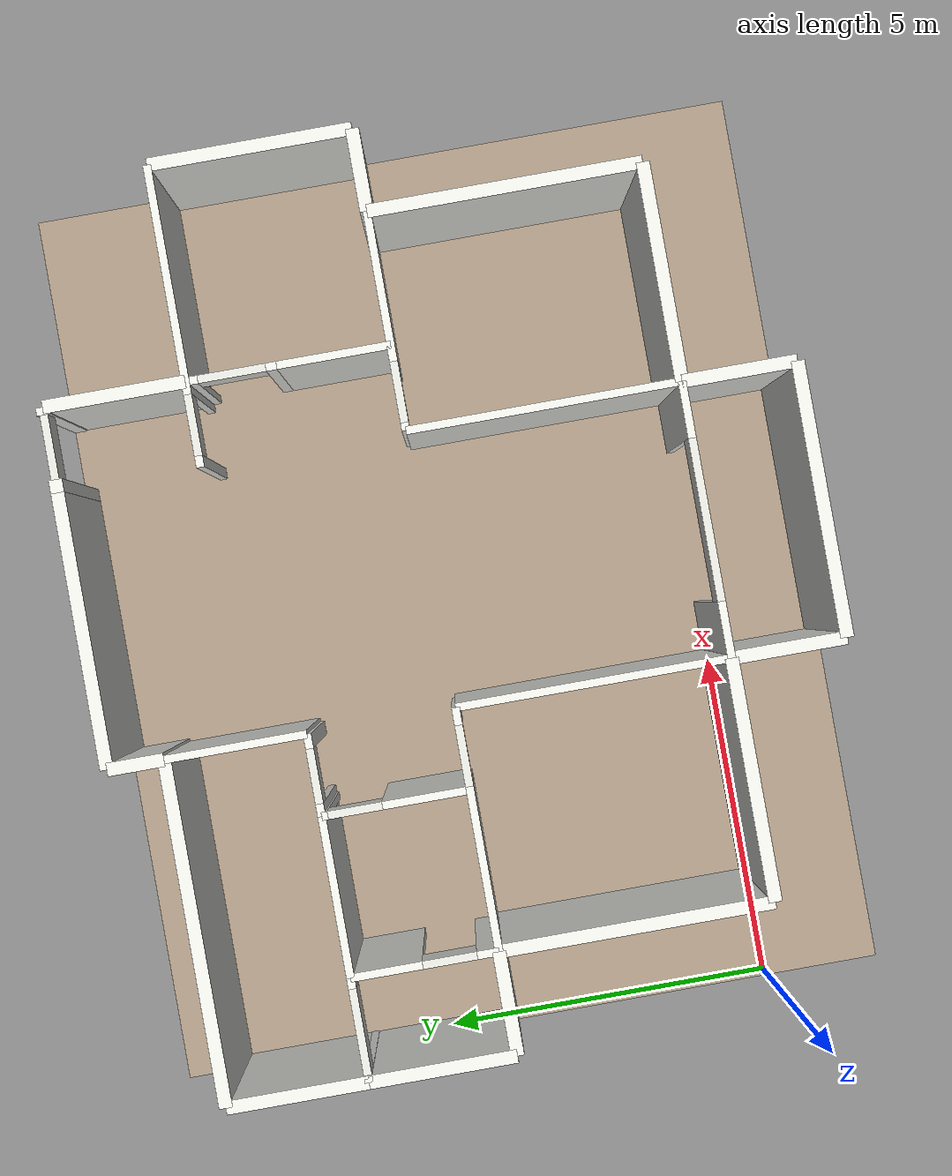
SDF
<sdf version="1.8">
 <world name="semnav_apartment">
  <gravity>0 0 -9.81</gravity>
  <physics name="1ms" type="ode">
   <real_time_update_rate>1000</real_time_update_rate>
   <max_step_size>0.001</max_step_size>
   <real_time_factor>1</real_time_factor>
   <ode>
    <solver>
     <type>quick</type>
     <iters>150</iters>
     <precon_iters>0</precon_iters>
     <sor>1.3999999999999999</sor>
     <use_dynamic_moi_rescaling>true</use_dynamic_moi_rescaling>
    </solver>
    <constraints>
     <cfm>1.0000000000000001e-05</cfm>
     <erp>0.20000000000000001</erp>
     <contact_max_correcting_vel>2000</contact_max_correcting_vel>
     <contact_surface_layer>0.01</contact_surface_layer>
    </constraints>
   </ode>
  </physics>
  <plugin filename="gz-sim-physics-system" name="gz::sim::systems::Physics"/>
  <plugin filename="gz-sim-user-commands-system" name="gz::sim::systems::UserCommands"/>
  <plugin filename="gz-sim-scene-broadcaster-system" name="gz::sim::systems::SceneBroadcaster"/>
  <plugin filename="gz-sim-sensors-system" name="gz::sim::systems::Sensors">
   <render_engine>ogre2</render_engine>
  </plugin>
  <plugin filename="gz-sim-imu-system" name="gz::sim::systems::Imu"/>
  <plugin filename="gz-sim-contact-system" name="gz::sim::systems::Contact"/>
  <scene><ambient>0.45 0.45 0.45</ambient><background>0.72 0.75 0.80</background></scene>
  <light type="directional" name="sun">
   <pose>0 0 8 0 0 0</pose>
   <diffuse>0.85 0.85 0.85 1</diffuse>
   <specular>0.2 0.2 0.2 1</specular>
   <direction>-0.4 0.3 -1</direction>
  </light>
  <light type="point" name="light_room_00">
   <pose>2.555 7.290 2.050 0 0 0</pose>
   <diffuse>0.72 0.72 0.68 1</diffuse>
   <attenuation><range>6.20</range></attenuation>
  </light>
  <light type="point" name="light_room_01">
   <pose>7.145 7.710 2.050 0 0 0</pose>
   <diffuse>0.72 0.72 0.68 1</diffuse>
   <attenuation><range>6.20</range></attenuation>
  </light>
  <light type="point" name="light_room_02">
   <pose>9.810 8.130 2.050 0 0 0</pose>
   <diffuse>0.72 0.72 0.68 1</diffuse>
   <attenuation><range>6.20</range></attenuation>
  </light>
  <light type="point" name="light_room_03">
   <pose>12.035 5.570 2.050 0 0 0</pose>
   <diffuse>0.72 0.72 0.68 1</diffuse>
   <attenuation><range>6.20</range></attenuation>
  </light>
  <light type="point" name="light_room_04">
   <pose>3.320 2.030 2.050 0 0 0</pose>
   <diffuse>0.72 0.72 0.68 1</diffuse>
   <attenuation><range>6.20</range></attenuation>
  </light>
  <light type="point" name="light_room_05">
   <pose>10.795 2.030 2.050 0 0 0</pose>
   <diffuse>0.72 0.72 0.68 1</diffuse>
   <attenuation><range>6.20</range></attenuation>
  </light>
  <light type="point" name="light_room_06">
   <pose>7.145 -0.850 2.050 0 0 0</pose>
   <diffuse>0.72 0.72 0.68 1</diffuse>
   <attenuation><range>6.20</range></attenuation>
  </light>
  <light type="point" name="light_room_07">
   <pose>0.765 5.150 2.050 0 0 0</pose>
   <diffuse>0.72 0.72 0.68 1</diffuse>
   <attenuation><range>6.20</range></attenuation>
  </light>
  <light type="point" name="light_room_08">
   <pose>2.715 5.150 2.050 0 0 0</pose>
   <diffuse>0.72 0.72 0.68 1</diffuse>
   <attenuation><range>6.20</range></attenuation>
  </light>
  <light type="point" name="light_room_09">
   <pose>7.145 2.395 2.050 0 0 0</pose>
   <diffuse>0.72 0.72 0.68 1</diffuse>
   <attenuation><range>6.20</range></attenuation>
  </light>
  <light type="point" name="light_room_10">
   <pose>7.145 5.515 2.050 0 0 0</pose>
   <diffuse>0.72 0.72 0.68 1</diffuse>
   <attenuation><range>6.20</range></attenuation>
  </light>
  <light type="point" name="light_room_11">
   <pose>4.505 5.150 2.050 0 0 0</pose>
   <diffuse>0.72 0.72 0.68 1</diffuse>
   <attenuation><range>6.20</range></attenuation>
  </light>
  <light type="point" name="light_room_12">
   <pose>9.810 5.570 2.050 0 0 0</pose>
   <diffuse>0.72 0.72 0.68 1</diffuse>
   <attenuation><range>6.20</range></attenuation>
  </light>
  <model name="apartment_floor">
   <static>true</static>
   <pose>6.8150 3.7400 -0.01 0 0 0</pose>
   <link name="link">
    <collision name="collision"><geometry><box><size>13.8300 11.0800 0.02</size></box></geometry></collision>
    <visual name="visual">
     <geometry><box><size>13.8300 11.0800 0.02</size></box></geometry>
     <material><ambient>0.55 0.50 0.45 1</ambient><diffuse>0.65 0.58 0.50 1</diffuse></material>
    </visual>
   </link>
  </model>
  <model name="ext_west_master_0">
   <static>true</static>
   <pose>1.5300 2.0300 1.2500 0 0 0</pose>
   <link name="link">
    <collision name="collision"><geometry><box><size>0.2000 4.0600 2.5000</size></box></geometry></collision>
    <visual name="visual">
     <geometry><box><size>0.2000 4.0600 2.5000</size></box></geometry>
     <material><ambient>0.85 0.85 0.85 1</ambient><diffuse>0.92 0.92 0.90 1</diffuse></material>
    </visual>
   </link>
  </model>
  <model name="ext_south_master_1">
   <static>true</static>
   <pose>3.3200 0.0000 1.2500 0 0 0</pose>
   <link name="link">
    <collision name="collision"><geometry><box><size>3.5800 0.2000 2.5000</size></box></geometry></collision>
    <visual name="visual">
     <geometry><box><size>3.5800 0.2000 2.5000</size></box></geometry>
     <material><ambient>0.85 0.85 0.85 1</ambient><diffuse>0.92 0.92 0.90 1</diffuse></material>
    </visual>
   </link>
  </model>
  <model name="ext_balcony_w_2">
   <static>true</static>
   <pose>5.1100 -0.8500 1.2500 0 0 0</pose>
   <link name="link">
    <collision name="collision"><geometry><box><size>0.2000 1.7000 2.5000</size></box></geometry></collision>
    <visual name="visual">
     <geometry><box><size>0.2000 1.7000 2.5000</size></box></geometry>
     <material><ambient>0.85 0.85 0.85 1</ambient><diffuse>0.92 0.92 0.90 1</diffuse></material>
    </visual>
   </link>
  </model>
  <model name="ext_balcony_s_3">
   <static>true</static>
   <pose>7.1450 -1.7000 1.2500 0 0 0</pose>
   <link name="link">
    <collision name="collision"><geometry><box><size>4.0700 0.2000 2.5000</size></box></geometry></collision>
    <visual name="visual">
     <geometry><box><size>4.0700 0.2000 2.5000</size></box></geometry>
     <material><ambient>0.85 0.85 0.85 1</ambient><diffuse>0.92 0.92 0.90 1</diffuse></material>
    </visual>
   </link>
  </model>
  <model name="ext_balcony_e_4">
   <static>true</static>
   <pose>9.1800 -0.8500 1.2500 0 0 0</pose>
   <link name="link">
    <collision name="collision"><geometry><box><size>0.2000 1.7000 2.5000</size></box></geometry></collision>
    <visual name="visual">
     <geometry><box><size>0.2000 1.7000 2.5000</size></box></geometry>
     <material><ambient>0.85 0.85 0.85 1</ambient><diffuse>0.92 0.92 0.90 1</diffuse></material>
    </visual>
   </link>
  </model>
  <model name="ext_south_second_5">
   <static>true</static>
   <pose>10.7950 0.0000 1.2500 0 0 0</pose>
   <link name="link">
    <collision name="collision"><geometry><box><size>3.2300 0.2000 2.5000</size></box></geometry></collision>
    <visual name="visual">
     <geometry><box><size>3.2300 0.2000 2.5000</size></box></geometry>
     <material><ambient>0.85 0.85 0.85 1</ambient><diffuse>0.92 0.92 0.90 1</diffuse></material>
    </visual>
   </link>
  </model>
  <model name="ext_east_second_6">
   <static>true</static>
   <pose>12.4100 2.0300 1.2500 0 0 0</pose>
   <link name="link">
    <collision name="collision"><geometry><box><size>0.2000 4.0600 2.5000</size></box></geometry></collision>
    <visual name="visual">
     <geometry><box><size>0.2000 4.0600 2.5000</size></box></geometry>
     <material><ambient>0.85 0.85 0.85 1</ambient><diffuse>0.92 0.92 0.90 1</diffuse></material>
    </visual>
   </link>
  </model>
  <model name="ext_jog_1220_7">
   <static>true</static>
   <pose>13.0200 4.0600 1.2500 0 0 0</pose>
   <link name="link">
    <collision name="collision"><geometry><box><size>1.2200 0.2000 2.5000</size></box></geometry></collision>
    <visual name="visual">
     <geometry><box><size>1.2200 0.2000 2.5000</size></box></geometry>
     <material><ambient>0.85 0.85 0.85 1</ambient><diffuse>0.92 0.92 0.90 1</diffuse></material>
    </visual>
   </link>
  </model>
  <model name="ext_east_third_8">
   <static>true</static>
   <pose>13.6300 5.5700 1.2500 0 0 0</pose>
   <link name="link">
    <collision name="collision"><geometry><box><size>0.2000 3.0200 2.5000</size></box></geometry></collision>
    <visual name="visual">
     <geometry><box><size>0.2000 3.0200 2.5000</size></box></geometry>
     <material><ambient>0.85 0.85 0.85 1</ambient><diffuse>0.92 0.92 0.90 1</diffuse></material>
    </visual>
   </link>
  </model>
  <model name="ext_east_entry_9">
   <static>true</static>
   <pose>10.4400 8.1300 1.2500 0 0 0</pose>
   <link name="link">
    <collision name="collision"><geometry><box><size>0.2000 2.1000 2.5000</size></box></geometry></collision>
    <visual name="visual">
     <geometry><box><size>0.2000 2.1000 2.5000</size></box></geometry>
     <material><ambient>0.85 0.85 0.85 1</ambient><diffuse>0.92 0.92 0.90 1</diffuse></material>
    </visual>
   </link>
  </model>
  <model name="ext_north_entry_10">
   <static>true</static>
   <pose>9.2775 9.1800 1.2500 0 0 0</pose>
   <link name="link">
    <collision name="collision"><geometry><box><size>0.1950 0.2000 2.5000</size></box></geometry></collision>
    <visual name="visual">
     <geometry><box><size>0.1950 0.2000 2.5000</size></box></geometry>
     <material><ambient>0.85 0.85 0.85 1</ambient><diffuse>0.92 0.92 0.90 1</diffuse></material>
    </visual>
   </link>
  </model>
  <model name="ext_north_entry_11">
   <static>true</static>
   <pose>10.3825 9.1800 1.2500 0 0 0</pose>
   <link name="link">
    <collision name="collision"><geometry><box><size>0.1150 0.2000 2.5000</size></box></geometry></collision>
    <visual name="visual">
     <geometry><box><size>0.1150 0.2000 2.5000</size></box></geometry>
     <material><ambient>0.85 0.85 0.85 1</ambient><diffuse>0.92 0.92 0.90 1</diffuse></material>
    </visual>
   </link>
  </model>
  <model name="ext_north_dining_12">
   <static>true</static>
   <pose>7.1450 9.1800 1.2500 0 0 0</pose>
   <link name="link">
    <collision name="collision"><geometry><box><size>4.0700 0.2000 2.5000</size></box></geometry></collision>
    <visual name="visual">
     <geometry><box><size>4.0700 0.2000 2.5000</size></box></geometry>
     <material><ambient>0.85 0.85 0.85 1</ambient><diffuse>0.92 0.92 0.90 1</diffuse></material>
    </visual>
   </link>
  </model>
  <model name="ext_jog_840_13">
   <static>true</static>
   <pose>5.1100 8.7600 1.2500 0 0 0</pose>
   <link name="link">
    <collision name="collision"><geometry><box><size>0.2000 0.8400 2.5000</size></box></geometry></collision>
    <visual name="visual">
     <geometry><box><size>0.2000 0.8400 2.5000</size></box></geometry>
     <material><ambient>0.85 0.85 0.85 1</ambient><diffuse>0.92 0.92 0.90 1</diffuse></material>
    </visual>
   </link>
  </model>
  <model name="ext_north_kitchen_14">
   <static>true</static>
   <pose>2.5550 8.3400 1.2500 0 0 0</pose>
   <link name="link">
    <collision name="collision"><geometry><box><size>5.1100 0.2000 2.5000</size></box></geometry></collision>
    <visual name="visual">
     <geometry><box><size>5.1100 0.2000 2.5000</size></box></geometry>
     <material><ambient>0.85 0.85 0.85 1</ambient><diffuse>0.92 0.92 0.90 1</diffuse></material>
    </visual>
   </link>
  </model>
  <model name="ext_west_kitchen_15">
   <static>true</static>
   <pose>0.0000 7.2900 1.2500 0 0 0</pose>
   <link name="link">
    <collision name="collision"><geometry><box><size>0.2000 2.1000 2.5000</size></box></geometry></collision>
    <visual name="visual">
     <geometry><box><size>0.2000 2.1000 2.5000</size></box></geometry>
     <material><ambient>0.85 0.85 0.85 1</ambient><diffuse>0.92 0.92 0.90 1</diffuse></material>
    </visual>
   </link>
  </model>
  <model name="ext_west_balcony_16">
   <static>true</static>
   <pose>0.0000 5.1500 1.2500 0 0 0</pose>
   <link name="link">
    <collision name="collision"><geometry><box><size>0.2000 2.1800 2.5000</size></box></geometry></collision>
    <visual name="visual">
     <geometry><box><size>0.2000 2.1800 2.5000</size></box></geometry>
     <material><ambient>0.85 0.85 0.85 1</ambient><diffuse>0.92 0.92 0.90 1</diffuse></material>
    </visual>
   </link>
  </model>
  <model name="ext_jog_1530_17">
   <static>true</static>
   <pose>0.7650 4.0600 1.2500 0 0 0</pose>
   <link name="link">
    <collision name="collision"><geometry><box><size>1.5300 0.2000 2.5000</size></box></geometry></collision>
    <visual name="visual">
     <geometry><box><size>1.5300 0.2000 2.5000</size></box></geometry>
     <material><ambient>0.85 0.85 0.85 1</ambient><diffuse>0.92 0.92 0.90 1</diffuse></material>
    </visual>
   </link>
  </model>
  <model name="int_master_east_18">
   <static>true</static>
   <pose>5.1100 2.0300 1.2500 0 0 0</pose>
   <link name="link">
    <collision name="collision"><geometry><box><size>0.1200 4.0600 2.5000</size></box></geometry></collision>
    <visual name="visual">
     <geometry><box><size>0.1200 4.0600 2.5000</size></box></geometry>
     <material><ambient>0.85 0.85 0.85 1</ambient><diffuse>0.92 0.92 0.90 1</diffuse></material>
    </visual>
   </link>
  </model>
  <model name="int_second_west_19">
   <static>true</static>
   <pose>9.1800 2.0300 1.2500 0 0 0</pose>
   <link name="link">
    <collision name="collision"><geometry><box><size>0.1200 4.0600 2.5000</size></box></geometry></collision>
    <visual name="visual">
     <geometry><box><size>0.1200 4.0600 2.5000</size></box></geometry>
     <material><ambient>0.85 0.85 0.85 1</ambient><diffuse>0.92 0.92 0.90 1</diffuse></material>
    </visual>
   </link>
  </model>
  <model name="int_master_north_20">
   <static>true</static>
   <pose>2.7400 4.0600 1.2500 0 0 0</pose>
   <link name="link">
    <collision name="collision"><geometry><box><size>2.4200 0.1200 2.5000</size></box></geometry></collision>
    <visual name="visual">
     <geometry><box><size>2.4200 0.1200 2.5000</size></box></geometry>
     <material><ambient>0.85 0.85 0.85 1</ambient><diffuse>0.92 0.92 0.90 1</diffuse></material>
    </visual>
   </link>
  </model>
  <model name="int_master_north_21">
   <static>true</static>
   <pose>4.9800 4.0600 1.2500 0 0 0</pose>
   <link name="link">
    <collision name="collision"><geometry><box><size>0.2600 0.1200 2.5000</size></box></geometry></collision>
    <visual name="visual">
     <geometry><box><size>0.2600 0.1200 2.5000</size></box></geometry>
     <material><ambient>0.85 0.85 0.85 1</ambient><diffuse>0.92 0.92 0.90 1</diffuse></material>
    </visual>
   </link>
  </model>
  <model name="int_second_north_22">
   <static>true</static>
   <pose>9.2400 4.0600 1.2500 0 0 0</pose>
   <link name="link">
    <collision name="collision"><geometry><box><size>0.1200 0.1200 2.5000</size></box></geometry></collision>
    <visual name="visual">
     <geometry><box><size>0.1200 0.1200 2.5000</size></box></geometry>
     <material><ambient>0.85 0.85 0.85 1</ambient><diffuse>0.92 0.92 0.90 1</diffuse></material>
    </visual>
   </link>
  </model>
  <model name="int_second_north_23">
   <static>true</static>
   <pose>11.3050 4.0600 1.2500 0 0 0</pose>
   <link name="link">
    <collision name="collision"><geometry><box><size>2.2100 0.1200 2.5000</size></box></geometry></collision>
    <visual name="visual">
     <geometry><box><size>2.2100 0.1200 2.5000</size></box></geometry>
     <material><ambient>0.85 0.85 0.85 1</ambient><diffuse>0.92 0.92 0.90 1</diffuse></material>
    </visual>
   </link>
  </model>
  <model name="int_balcony_bath_24">
   <static>true</static>
   <pose>1.5300 4.2200 1.2500 0 0 0</pose>
   <link name="link">
    <collision name="collision"><geometry><box><size>0.1200 0.3200 2.5000</size></box></geometry></collision>
    <visual name="visual">
     <geometry><box><size>0.1200 0.3200 2.5000</size></box></geometry>
     <material><ambient>0.85 0.85 0.85 1</ambient><diffuse>0.92 0.92 0.90 1</diffuse></material>
    </visual>
   </link>
  </model>
  <model name="int_balcony_bath_25">
   <static>true</static>
   <pose>1.5300 5.7100 1.2500 0 0 0</pose>
   <link name="link">
    <collision name="collision"><geometry><box><size>0.1200 1.0600 2.5000</size></box></geometry></collision>
    <visual name="visual">
     <geometry><box><size>0.1200 1.0600 2.5000</size></box></geometry>
     <material><ambient>0.85 0.85 0.85 1</ambient><diffuse>0.92 0.92 0.90 1</diffuse></material>
    </visual>
   </link>
  </model>
  <model name="int_bath_east_26">
   <static>true</static>
   <pose>3.9000 4.7050 1.2500 0 0 0</pose>
   <link name="link">
    <collision name="collision"><geometry><box><size>0.1200 1.2900 2.5000</size></box></geometry></collision>
    <visual name="visual">
     <geometry><box><size>0.1200 1.2900 2.5000</size></box></geometry>
     <material><ambient>0.85 0.85 0.85 1</ambient><diffuse>0.92 0.92 0.90 1</diffuse></material>
    </visual>
   </link>
  </model>
  <model name="int_bath_east_27">
   <static>true</static>
   <pose>3.9000 6.1950 1.2500 0 0 0</pose>
   <link name="link">
    <collision name="collision"><geometry><box><size>0.1200 0.0900 2.5000</size></box></geometry></collision>
    <visual name="visual">
     <geometry><box><size>0.1200 0.0900 2.5000</size></box></geometry>
     <material><ambient>0.85 0.85 0.85 1</ambient><diffuse>0.92 0.92 0.90 1</diffuse></material>
    </visual>
   </link>
  </model>
  <model name="int_bath_north_28">
   <static>true</static>
   <pose>2.7150 6.2400 1.2500 0 0 0</pose>
   <link name="link">
    <collision name="collision"><geometry><box><size>2.3700 0.1200 2.5000</size></box></geometry></collision>
    <visual name="visual">
     <geometry><box><size>2.3700 0.1200 2.5000</size></box></geometry>
     <material><ambient>0.85 0.85 0.85 1</ambient><diffuse>0.92 0.92 0.90 1</diffuse></material>
    </visual>
   </link>
  </model>
  <model name="int_balcony_north_29">
   <static>true</static>
   <pose>0.0550 6.2400 1.2500 0 0 0</pose>
   <link name="link">
    <collision name="collision"><geometry><box><size>0.1100 0.1200 2.5000</size></box></geometry></collision>
    <visual name="visual">
     <geometry><box><size>0.1100 0.1200 2.5000</size></box></geometry>
     <material><ambient>0.85 0.85 0.85 1</ambient><diffuse>0.92 0.92 0.90 1</diffuse></material>
    </visual>
   </link>
  </model>
  <model name="int_balcony_north_30">
   <static>true</static>
   <pose>1.4500 6.2400 1.2500 0 0 0</pose>
   <link name="link">
    <collision name="collision"><geometry><box><size>0.1600 0.1200 2.5000</size></box></geometry></collision>
    <visual name="visual">
     <geometry><box><size>0.1600 0.1200 2.5000</size></box></geometry>
     <material><ambient>0.85 0.85 0.85 1</ambient><diffuse>0.92 0.92 0.90 1</diffuse></material>
    </visual>
   </link>
  </model>
  <model name="int_kitchen_south_31">
   <static>true</static>
   <pose>3.9925 6.2400 1.2500 0 0 0</pose>
   <link name="link">
    <collision name="collision"><geometry><box><size>0.1850 0.1200 2.5000</size></box></geometry></collision>
    <visual name="visual">
     <geometry><box><size>0.1850 0.1200 2.5000</size></box></geometry>
     <material><ambient>0.85 0.85 0.85 1</ambient><diffuse>0.92 0.92 0.90 1</diffuse></material>
    </visual>
   </link>
  </model>
  <model name="int_kitchen_south_32">
   <static>true</static>
   <pose>5.0025 6.2400 1.2500 0 0 0</pose>
   <link name="link">
    <collision name="collision"><geometry><box><size>0.2150 0.1200 2.5000</size></box></geometry></collision>
    <visual name="visual">
     <geometry><box><size>0.2150 0.1200 2.5000</size></box></geometry>
     <material><ambient>0.85 0.85 0.85 1</ambient><diffuse>0.92 0.92 0.90 1</diffuse></material>
    </visual>
   </link>
  </model>
  <model name="int_kitchen_dining_33">
   <static>true</static>
   <pose>5.1100 7.2900 1.2500 0 0 0</pose>
   <link name="link">
    <collision name="collision"><geometry><box><size>0.1200 2.1000 2.5000</size></box></geometry></collision>
    <visual name="visual">
     <geometry><box><size>0.1200 2.1000 2.5000</size></box></geometry>
     <material><ambient>0.85 0.85 0.85 1</ambient><diffuse>0.92 0.92 0.90 1</diffuse></material>
    </visual>
   </link>
  </model>
  <model name="int_entry_third_n_34">
   <static>true</static>
   <pose>9.2650 7.0800 1.2500 0 0 0</pose>
   <link name="link">
    <collision name="collision"><geometry><box><size>0.1700 0.1200 2.5000</size></box></geometry></collision>
    <visual name="visual">
     <geometry><box><size>0.1700 0.1200 2.5000</size></box></geometry>
     <material><ambient>0.85 0.85 0.85 1</ambient><diffuse>0.92 0.92 0.90 1</diffuse></material>
    </visual>
   </link>
  </model>
  <model name="int_entry_third_n_35">
   <static>true</static>
   <pose>11.9400 7.0800 1.2500 0 0 0</pose>
   <link name="link">
    <collision name="collision"><geometry><box><size>3.3800 0.1200 2.5000</size></box></geometry></collision>
    <visual name="visual">
     <geometry><box><size>3.3800 0.1200 2.5000</size></box></geometry>
     <material><ambient>0.85 0.85 0.85 1</ambient><diffuse>0.92 0.92 0.90 1</diffuse></material>
    </visual>
   </link>
  </model>
  <model name="int_third_west_s_36">
   <static>true</static>
   <pose>10.4400 4.9000 1.2500 0 0 0</pose>
   <link name="link">
    <collision name="collision"><geometry><box><size>0.1200 1.6800 2.5000</size></box></geometry></collision>
    <visual name="visual">
     <geometry><box><size>0.1200 1.6800 2.5000</size></box></geometry>
     <material><ambient>0.85 0.85 0.85 1</ambient><diffuse>0.92 0.92 0.90 1</diffuse></material>
    </visual>
   </link>
  </model>
  <model name="int_third_west_n_37">
   <static>true</static>
   <pose>10.4400 5.8200 1.2500 0 0 0</pose>
   <link name="link">
    <collision name="collision"><geometry><box><size>0.1200 0.1600 2.5000</size></box></geometry></collision>
    <visual name="visual">
     <geometry><box><size>0.1200 0.1600 2.5000</size></box></geometry>
     <material><ambient>0.85 0.85 0.85 1</ambient><diffuse>0.92 0.92 0.90 1</diffuse></material>
    </visual>
   </link>
  </model>
  <model name="int_third_west_n_38">
   <static>true</static>
   <pose>10.4400 6.9900 1.2500 0 0 0</pose>
   <link name="link">
    <collision name="collision"><geometry><box><size>0.1200 0.1800 2.5000</size></box></geometry></collision>
    <visual name="visual">
     <geometry><box><size>0.1200 0.1800 2.5000</size></box></geometry>
     <material><ambient>0.85 0.85 0.85 1</ambient><diffuse>0.92 0.92 0.90 1</diffuse></material>
    </visual>
   </link>
  </model>
  <model name="int_living_balcony_39">
   <static>true</static>
   <pose>5.5275 0.0000 1.2500 0 0 0</pose>
   <link name="link">
    <collision name="collision"><geometry><box><size>0.8350 0.1200 2.5000</size></box></geometry></collision>
    <visual name="visual">
     <geometry><box><size>0.8350 0.1200 2.5000</size></box></geometry>
     <material><ambient>0.85 0.85 0.85 1</ambient><diffuse>0.92 0.92 0.90 1</diffuse></material>
    </visual>
   </link>
  </model>
  <model name="int_living_balcony_40">
   <static>true</static>
   <pose>8.7625 0.0000 1.2500 0 0 0</pose>
   <link name="link">
    <collision name="collision"><geometry><box><size>0.8350 0.1200 2.5000</size></box></geometry></collision>
    <visual name="visual">
     <geometry><box><size>0.8350 0.1200 2.5000</size></box></geometry>
     <material><ambient>0.85 0.85 0.85 1</ambient><diffuse>0.92 0.92 0.90 1</diffuse></material>
    </visual>
   </link>
  </model>
  <model name="lintel_door_master_arm">
   <static>true</static>
   <pose>4.4000 4.0600 2.2750 0 0 0</pose>
   <link name="link">
    <collision name="collision"><geometry><box><size>0.9000 0.1200 0.4500</size></box></geometry></collision>
    <visual name="visual">
     <geometry><box><size>0.9000 0.1200 0.4500</size></box></geometry>
     <material><ambient>0.80 0.80 0.80 1</ambient><diffuse>0.88 0.88 0.86 1</diffuse></material>
    </visual>
   </link>
  </model>
  <model name="lintel_door_second_arm">
   <static>true</static>
   <pose>9.7500 4.0600 2.2750 0 0 0</pose>
   <link name="link">
    <collision name="collision"><geometry><box><size>0.9000 0.1200 0.4500</size></box></geometry></collision>
    <visual name="visual">
     <geometry><box><size>0.9000 0.1200 0.4500</size></box></geometry>
     <material><ambient>0.80 0.80 0.80 1</ambient><diffuse>0.88 0.88 0.86 1</diffuse></material>
    </visual>
   </link>
  </model>
  <model name="lintel_door_kitchen_arm">
   <static>true</static>
   <pose>4.4900 6.2400 2.2750 0 0 0</pose>
   <link name="link">
    <collision name="collision"><geometry><box><size>0.8100 0.1200 0.4500</size></box></geometry></collision>
    <visual name="visual">
     <geometry><box><size>0.8100 0.1200 0.4500</size></box></geometry>
     <material><ambient>0.80 0.80 0.80 1</ambient><diffuse>0.88 0.88 0.86 1</diffuse></material>
    </visual>
   </link>
  </model>
  <model name="lintel_door_balcony_kitchen">
   <static>true</static>
   <pose>0.7400 6.2400 2.2750 0 0 0</pose>
   <link name="link">
    <collision name="collision"><geometry><box><size>1.2600 0.1200 0.4500</size></box></geometry></collision>
    <visual name="visual">
     <geometry><box><size>1.2600 0.1200 0.4500</size></box></geometry>
     <material><ambient>0.80 0.80 0.80 1</ambient><diffuse>0.88 0.88 0.86 1</diffuse></material>
    </visual>
   </link>
  </model>
  <model name="lintel_door_entry_arm">
   <static>true</static>
   <pose>9.8000 7.0800 2.2750 0 0 0</pose>
   <link name="link">
    <collision name="collision"><geometry><box><size>0.9000 0.1200 0.4500</size></box></geometry></collision>
    <visual name="visual">
     <geometry><box><size>0.9000 0.1200 0.4500</size></box></geometry>
     <material><ambient>0.80 0.80 0.80 1</ambient><diffuse>0.88 0.88 0.86 1</diffuse></material>
    </visual>
   </link>
  </model>
  <model name="lintel_door_front">
   <static>true</static>
   <pose>9.8500 9.1800 2.2750 0 0 0</pose>
   <link name="link">
    <collision name="collision"><geometry><box><size>0.9500 0.1200 0.4500</size></box></geometry></collision>
    <visual name="visual">
     <geometry><box><size>0.9500 0.1200 0.4500</size></box></geometry>
     <material><ambient>0.80 0.80 0.80 1</ambient><diffuse>0.88 0.88 0.86 1</diffuse></material>
    </visual>
   </link>
  </model>
  <model name="lintel_door_balcony_south">
   <static>true</static>
   <pose>7.1450 0.0000 2.2750 0 0 0</pose>
   <link name="link">
    <collision name="collision"><geometry><box><size>2.4000 0.1200 0.4500</size></box></geometry></collision>
    <visual name="visual">
     <geometry><box><size>2.4000 0.1200 0.4500</size></box></geometry>
     <material><ambient>0.80 0.80 0.80 1</ambient><diffuse>0.88 0.88 0.86 1</diffuse></material>
    </visual>
   </link>
  </model>
  <model name="lintel_door_bath">
   <static>true</static>
   <pose>3.9000 5.7500 2.2750 0 0 0</pose>
   <link name="link">
    <collision name="collision"><geometry><box><size>0.1200 0.8000 0.4500</size></box></geometry></collision>
    <visual name="visual">
     <geometry><box><size>0.1200 0.8000 0.4500</size></box></geometry>
     <material><ambient>0.80 0.80 0.80 1</ambient><diffuse>0.88 0.88 0.86 1</diffuse></material>
    </visual>
   </link>
  </model>
  <model name="lintel_door_bath_balcony">
   <static>true</static>
   <pose>1.5300 4.7800 2.2750 0 0 0</pose>
   <link name="link">
    <collision name="collision"><geometry><box><size>0.1200 0.8000 0.4500</size></box></geometry></collision>
    <visual name="visual">
     <geometry><box><size>0.1200 0.8000 0.4500</size></box></geometry>
     <material><ambient>0.80 0.80 0.80 1</ambient><diffuse>0.88 0.88 0.86 1</diffuse></material>
    </visual>
   </link>
  </model>
  <model name="lintel_door_third">
   <static>true</static>
   <pose>10.4400 6.4000 2.2750 0 0 0</pose>
   <link name="link">
    <collision name="collision"><geometry><box><size>0.1200 1.0000 0.4500</size></box></geometry></collision>
    <visual name="visual">
     <geometry><box><size>0.1200 1.0000 0.4500</size></box></geometry>
     <material><ambient>0.80 0.80 0.80 1</ambient><diffuse>0.88 0.88 0.86 1</diffuse></material>
    </visual>
   </link>
  </model>
 </world>
</sdf>
